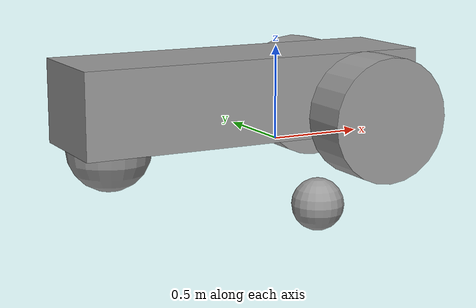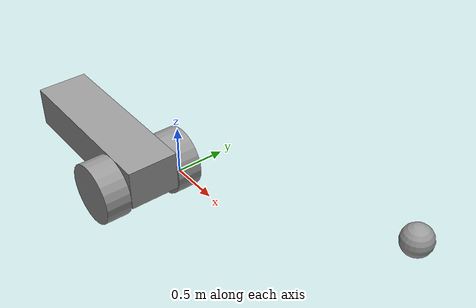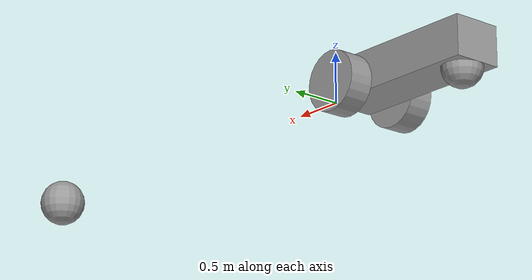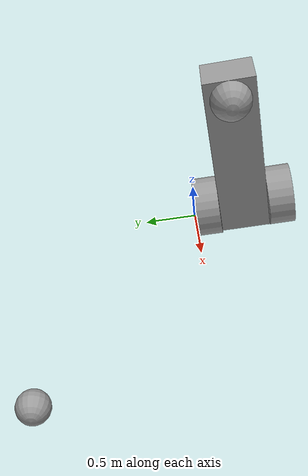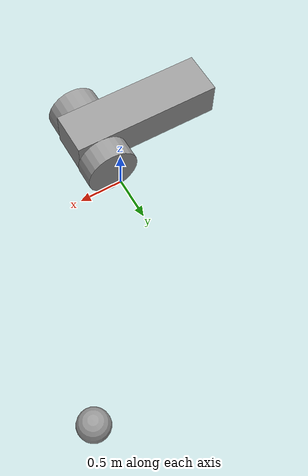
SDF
<?xml version='1.0'?>
<sdf version='1.6'>
  <model name='car'>
    <link name='link_0'>
      <pose frame=''>-0.48996 -0.502878 0.353975 0 -0 0</pose>
      <inertial>
        <mass>0.34063</mass>
        <inertia>
          <ixx>0.0115684</ixx>
          <ixy>0</ixy>
          <ixz>0</ixz>
          <iyy>0.0879086</iyy>
          <iyz>0</iyz>
          <izz>0.0904686</izz>
        </inertia>
        <pose frame=''>0 0 0 0 -0 0</pose>
      </inertial>
      <gravity>1</gravity>
      <self_collide>0</self_collide>
      <kinematic>0</kinematic>
      <visual name='visual'>
        <pose frame=''>0 0 0 0 -0 0</pose>
        <geometry>
          <box>
            <size>1.71413 0.498864 0.398338</size>
          </box>
        </geometry>
        <material>
          <lighting>1</lighting>
          <script>
            <uri>file://media/materials/scripts/gazebo.material</uri>
            <name>Gazebo/Grey</name>
          </script>
          <ambient>0.3 0.3 0.3 1</ambient>
          <diffuse>0.7 0.7 0.7 1</diffuse>
          <specular>0.01 0.01 0.01 1</specular>
          <emissive>0 0 0 1</emissive>
          <shader type='vertex'>
            <normal_map>__default__</normal_map>
          </shader>
        </material>
        <transparency>0</transparency>
        <cast_shadows>1</cast_shadows>
      </visual>
      <collision name='collision'>
        <laser_retro>0</laser_retro>
        <max_contacts>10</max_contacts>
        <pose frame=''>0 0 0 0 -0 0</pose>
        <geometry>
          <box>
            <size>1.71413 0.498864 0.398338</size>
          </box>
        </geometry>
        <surface>
          <friction>
            <ode>
              <mu>1</mu>
              <mu2>1</mu2>
              <fdir1>0 0 0</fdir1>
              <slip1>0</slip1>
              <slip2>0</slip2>
            </ode>
            <torsional>
              <coefficient>1</coefficient>
              <patch_radius>0</patch_radius>
              <surface_radius>0</surface_radius>
              <use_patch_radius>1</use_patch_radius>
              <ode>
                <slip>0</slip>
              </ode>
            </torsional>
          </friction>
          <bounce>
            <restitution_coefficient>0</restitution_coefficient>
            <threshold>1e+06</threshold>
          </bounce>
          <contact>
            <collide_without_contact>0</collide_without_contact>
            <collide_without_contact_bitmask>1</collide_without_contact_bitmask>
            <collide_bitmask>1</collide_bitmask>
            <ode>
              <soft_cfm>0</soft_cfm>
              <soft_erp>0.2</soft_erp>
              <kp>1e+13</kp>
              <kd>1</kd>
              <max_vel>0.01</max_vel>
              <min_depth>0</min_depth>
            </ode>
            <bullet>
              <split_impulse>1</split_impulse>
              <split_impulse_penetration_threshold>-0.01</split_impulse_penetration_threshold>
              <soft_cfm>0</soft_cfm>
              <soft_erp>0.2</soft_erp>
              <kp>1e+13</kp>
              <kd>1</kd>
            </bullet>
          </contact>
        </surface>
      </collision>
    </link>
    <link name='link_3'>
      <pose frame=''>0.067105 -0.877339 0.253975 1.5707 -0 0</pose>
      <inertial>
        <mass>1</mass>
        <inertia>
          <ixx>0.145833</ixx>
          <ixy>0</ixy>
          <ixz>0</ixz>
          <iyy>0.145833</iyy>
          <iyz>0</iyz>
          <izz>0.125</izz>
        </inertia>
        <pose frame=''>0 0 0 0 -0 0</pose>
      </inertial>
      <gravity>1</gravity>
      <self_collide>0</self_collide>
      <kinematic>0</kinematic>
      <visual name='visual'>
        <pose frame=''>0 0 0 0 -0 0</pose>
        <geometry>
          <cylinder>
            <radius>0.3</radius>
            <length>0.25</length>
          </cylinder>
        </geometry>
        <material>
          <lighting>1</lighting>
          <script>
            <uri>file://media/materials/scripts/gazebo.material</uri>
            <name>Gazebo/Grey</name>
          </script>
          <ambient>0.3 0.3 0.3 1</ambient>
          <diffuse>0.7 0.7 0.7 1</diffuse>
          <specular>0.01 0.01 0.01 1</specular>
          <emissive>0 0 0 1</emissive>
          <shader type='vertex'>
            <normal_map>__default__</normal_map>
          </shader>
        </material>
        <transparency>0</transparency>
        <cast_shadows>1</cast_shadows>
      </visual>
      <collision name='collision'>
        <laser_retro>0</laser_retro>
        <max_contacts>10</max_contacts>
        <pose frame=''>0 0 0 0 -0 0</pose>
        <geometry>
          <cylinder>
            <radius>0.3</radius>
            <length>0.25</length>
          </cylinder>
        </geometry>
        <surface>
          <friction>
            <ode>
              <mu>1</mu>
              <mu2>1</mu2>
              <fdir1>0 0 0</fdir1>
              <slip1>0</slip1>
              <slip2>0</slip2>
            </ode>
            <torsional>
              <coefficient>1</coefficient>
              <patch_radius>0</patch_radius>
              <surface_radius>0</surface_radius>
              <use_patch_radius>1</use_patch_radius>
              <ode>
                <slip>0</slip>
              </ode>
            </torsional>
          </friction>
          <bounce>
            <restitution_coefficient>0</restitution_coefficient>
            <threshold>1e+06</threshold>
          </bounce>
          <contact>
            <collide_without_contact>0</collide_without_contact>
            <collide_without_contact_bitmask>1</collide_without_contact_bitmask>
            <collide_bitmask>1</collide_bitmask>
            <ode>
              <soft_cfm>0</soft_cfm>
              <soft_erp>0.2</soft_erp>
              <kp>1e+13</kp>
              <kd>1</kd>
              <max_vel>0.01</max_vel>
              <min_depth>0</min_depth>
            </ode>
            <bullet>
              <split_impulse>1</split_impulse>
              <split_impulse_penetration_threshold>-0.01</split_impulse_penetration_threshold>
              <soft_cfm>0</soft_cfm>
              <soft_erp>0.2</soft_erp>
              <kp>1e+13</kp>
              <kd>1</kd>
            </bullet>
          </contact>
        </surface>
      </collision>
    </link>
    <link name='link_3_clone'>
      <pose frame=''>0.089488 -0.130005 0.253975 1.5707 -0 0</pose>
      <inertial>
        <mass>1</mass>
        <inertia>
          <ixx>0.145833</ixx>
          <ixy>0</ixy>
          <ixz>0</ixz>
          <iyy>0.145833</iyy>
          <iyz>0</iyz>
          <izz>0.125</izz>
        </inertia>
        <pose frame=''>0 0 0 0 -0 0</pose>
      </inertial>
      <self_collide>0</self_collide>
      <kinematic>0</kinematic>
      <gravity>1</gravity>
      <visual name='visual'>
        <pose frame=''>0 0 0 0 -0 0</pose>
        <geometry>
          <cylinder>
            <radius>0.3</radius>
            <length>0.25</length>
          </cylinder>
        </geometry>
        <material>
          <lighting>1</lighting>
          <script>
            <uri>file://media/materials/scripts/gazebo.material</uri>
            <name>Gazebo/Grey</name>
          </script>
          <ambient>0.3 0.3 0.3 1</ambient>
          <diffuse>0.7 0.7 0.7 1</diffuse>
          <specular>0.01 0.01 0.01 1</specular>
          <emissive>0 0 0 1</emissive>
          <shader type='vertex'>
            <normal_map>__default__</normal_map>
          </shader>
        </material>
        <transparency>0</transparency>
        <cast_shadows>1</cast_shadows>
      </visual>
      <collision name='collision'>
        <laser_retro>0</laser_retro>
        <max_contacts>10</max_contacts>
        <pose frame=''>0 0 0 0 -0 0</pose>
        <geometry>
          <cylinder>
            <radius>0.3</radius>
            <length>0.25</length>
          </cylinder>
        </geometry>
        <surface>
          <friction>
            <ode>
              <mu>1</mu>
              <mu2>1</mu2>
              <fdir1>0 0 0</fdir1>
              <slip1>0</slip1>
              <slip2>0</slip2>
            </ode>
            <torsional>
              <coefficient>1</coefficient>
              <patch_radius>0</patch_radius>
              <surface_radius>0</surface_radius>
              <use_patch_radius>1</use_patch_radius>
              <ode>
                <slip>0</slip>
              </ode>
            </torsional>
          </friction>
          <bounce>
            <restitution_coefficient>0</restitution_coefficient>
            <threshold>1e+06</threshold>
          </bounce>
          <contact>
            <collide_without_contact>0</collide_without_contact>
            <collide_without_contact_bitmask>1</collide_without_contact_bitmask>
            <collide_bitmask>1</collide_bitmask>
            <ode>
              <soft_cfm>0</soft_cfm>
              <soft_erp>0.2</soft_erp>
              <kp>1e+13</kp>
              <kd>1</kd>
              <max_vel>0.01</max_vel>
              <min_depth>0</min_depth>
            </ode>
            <bullet>
              <split_impulse>1</split_impulse>
              <split_impulse_penetration_threshold>-0.01</split_impulse_penetration_threshold>
              <soft_cfm>0</soft_cfm>
              <soft_erp>0.2</soft_erp>
              <kp>1e+13</kp>
              <kd>1</kd>
            </bullet>
          </contact>
        </surface>
      </collision>
    </link>
    <link name='link_4'>
      <pose frame=''>1.48039 2.0131 -1.01661 0 -0 0</pose>
      <inertial>
        <mass>1</mass>
        <inertia>
          <ixx>0.1</ixx>
          <ixy>0</ixy>
          <ixz>0</ixz>
          <iyy>0.1</iyy>
          <iyz>0</iyz>
          <izz>0.1</izz>
        </inertia>
        <pose frame=''>0 0 0 0 -0 0</pose>
      </inertial>
      <gravity>1</gravity>
      <self_collide>0</self_collide>
      <kinematic>0</kinematic>
      <visual name='visual'>
        <pose frame=''>0 0 0 0 -0 0</pose>
        <geometry>
          <sphere>
            <radius>0.2</radius>
          </sphere>
        </geometry>
        <material>
          <lighting>1</lighting>
          <script>
            <uri>file://media/materials/scripts/gazebo.material</uri>
            <name>Gazebo/Grey</name>
          </script>
          <ambient>0.3 0.3 0.3 1</ambient>
          <diffuse>0.7 0.7 0.7 1</diffuse>
          <specular>0.01 0.01 0.01 1</specular>
          <emissive>0 0 0 1</emissive>
          <shader type='vertex'>
            <normal_map>__default__</normal_map>
          </shader>
        </material>
        <transparency>0</transparency>
        <cast_shadows>1</cast_shadows>
      </visual>
      <collision name='collision'>
        <laser_retro>0</laser_retro>
        <max_contacts>10</max_contacts>
        <pose frame=''>0 0 0 0 -0 0</pose>
        <geometry>
          <sphere>
            <radius>0.2</radius>
          </sphere>
        </geometry>
        <surface>
          <friction>
            <ode>
              <mu>1</mu>
              <mu2>1</mu2>
              <fdir1>0 0 0</fdir1>
              <slip1>0</slip1>
              <slip2>0</slip2>
            </ode>
            <torsional>
              <coefficient>1</coefficient>
              <patch_radius>0</patch_radius>
              <surface_radius>0</surface_radius>
              <use_patch_radius>1</use_patch_radius>
              <ode>
                <slip>0</slip>
              </ode>
            </torsional>
          </friction>
          <bounce>
            <restitution_coefficient>0</restitution_coefficient>
            <threshold>1e+06</threshold>
          </bounce>
          <contact>
            <collide_without_contact>0</collide_without_contact>
            <collide_without_contact_bitmask>1</collide_without_contact_bitmask>
            <collide_bitmask>1</collide_bitmask>
            <ode>
              <soft_cfm>0</soft_cfm>
              <soft_erp>0.2</soft_erp>
              <kp>1e+13</kp>
              <kd>1</kd>
              <max_vel>0.01</max_vel>
              <min_depth>0</min_depth>
            </ode>
            <bullet>
              <split_impulse>1</split_impulse>
              <split_impulse_penetration_threshold>-0.01</split_impulse_penetration_threshold>
              <soft_cfm>0</soft_cfm>
              <soft_erp>0.2</soft_erp>
              <kp>1e+13</kp>
              <kd>1</kd>
            </bullet>
          </contact>
        </surface>
      </collision>
    </link>
    <link name='link_5'>
      <pose frame=''>-1.14702 -0.502878 0.153975 0 -0 0</pose>
      <inertial>
        <mass>1</mass>
        <inertia>
          <ixx>0.1</ixx>
          <ixy>0</ixy>
          <ixz>0</ixz>
          <iyy>0.1</iyy>
          <iyz>0</iyz>
          <izz>0.1</izz>
        </inertia>
        <pose frame=''>0 0 0 0 -0 0</pose>
      </inertial>
      <gravity>1</gravity>
      <self_collide>0</self_collide>
      <kinematic>0</kinematic>
      <visual name='visual'>
        <pose frame=''>0 0 0 0 -0 0</pose>
        <geometry>
          <sphere>
            <radius>0.2</radius>
          </sphere>
        </geometry>
        <material>
          <lighting>1</lighting>
          <script>
            <uri>file://media/materials/scripts/gazebo.material</uri>
            <name>Gazebo/Grey</name>
          </script>
          <ambient>0.3 0.3 0.3 1</ambient>
          <diffuse>0.7 0.7 0.7 1</diffuse>
          <specular>0.01 0.01 0.01 1</specular>
          <emissive>0 0 0 1</emissive>
          <shader type='vertex'>
            <normal_map>__default__</normal_map>
          </shader>
        </material>
        <transparency>0</transparency>
        <cast_shadows>1</cast_shadows>
      </visual>
      <collision name='collision'>
        <laser_retro>0</laser_retro>
        <max_contacts>10</max_contacts>
        <pose frame=''>0 0 0 0 -0 0</pose>
        <geometry>
          <sphere>
            <radius>0.2</radius>
          </sphere>
        </geometry>
        <surface>
          <friction>
            <ode>
              <mu>1</mu>
              <mu2>1</mu2>
              <fdir1>0 0 0</fdir1>
              <slip1>0</slip1>
              <slip2>0</slip2>
            </ode>
            <torsional>
              <coefficient>1</coefficient>
              <patch_radius>0</patch_radius>
              <surface_radius>0</surface_radius>
              <use_patch_radius>1</use_patch_radius>
              <ode>
                <slip>0</slip>
              </ode>
            </torsional>
          </friction>
          <bounce>
            <restitution_coefficient>0</restitution_coefficient>
            <threshold>1e+06</threshold>
          </bounce>
          <contact>
            <collide_without_contact>0</collide_without_contact>
            <collide_without_contact_bitmask>1</collide_without_contact_bitmask>
            <collide_bitmask>1</collide_bitmask>
            <ode>
              <soft_cfm>0</soft_cfm>
              <soft_erp>0.2</soft_erp>
              <kp>1e+13</kp>
              <kd>1</kd>
              <max_vel>0.01</max_vel>
              <min_depth>0</min_depth>
            </ode>
            <bullet>
              <split_impulse>1</split_impulse>
              <split_impulse_penetration_threshold>-0.01</split_impulse_penetration_threshold>
              <soft_cfm>0</soft_cfm>
              <soft_erp>0.2</soft_erp>
              <kp>1e+13</kp>
              <kd>1</kd>
            </bullet>
          </contact>
        </surface>
      </collision>
    </link>
    <joint name='link_0_JOINT_1' type='revolute'>
      <parent>link_0</parent>
      <child>link_3_clone</child>
      <pose frame=''>0 0 0 0 -0 0</pose>
      <axis>
        <xyz>0 0 1</xyz>
        <use_parent_model_frame>0</use_parent_model_frame>
        <limit>
          <lower>-1.79769e+308</lower>
          <upper>1.79769e+308</upper>
          <effort>-1</effort>
          <velocity>-1</velocity>
        </limit>
        <dynamics>
          <spring_reference>0</spring_reference>
          <spring_stiffness>0</spring_stiffness>
          <damping>0</damping>
        </dynamics>
      </axis>
      <physics>
        <ode>
          <limit>
            <cfm>0</cfm>
            <erp>0.2</erp>
          </limit>
          <suspension>
            <cfm>0</cfm>
            <erp>0.2</erp>
          </suspension>
        </ode>
      </physics>
    </joint>
    <joint name='link_0_JOINT_5' type='revolute'>
      <parent>link_0</parent>
      <child>link_3</child>
      <pose frame=''>0 0 0 0 -0 0</pose>
      <axis>
        <xyz>1 0 0</xyz>
        <use_parent_model_frame>0</use_parent_model_frame>
        <limit>
          <lower>-1.79769e+308</lower>
          <upper>1.79769e+308</upper>
          <effort>-1</effort>
          <velocity>-1</velocity>
        </limit>
        <dynamics>
          <spring_reference>0</spring_reference>
          <spring_stiffness>0</spring_stiffness>
          <damping>0</damping>
        </dynamics>
      </axis>
      <physics>
        <ode>
          <limit>
            <cfm>0</cfm>
            <erp>0.2</erp>
          </limit>
          <suspension>
            <cfm>0</cfm>
            <erp>0.2</erp>
          </suspension>
        </ode>
      </physics>
    </joint>
    <joint name='link_0_JOINT_6' type='ball'>
      <parent>link_0</parent>
      <child>link_5</child>
      <pose frame=''>0 0 0 0 -0 0</pose>
      <physics>
        <ode>
          <limit>
            <cfm>0</cfm>
            <erp>0.2</erp>
          </limit>
          <suspension>
            <cfm>0</cfm>
            <erp>0.2</erp>
          </suspension>
        </ode>
      </physics>
    </joint>
    <static>0</static>
    <allow_auto_disable>1</allow_auto_disable>
  </model>
</sdf>
